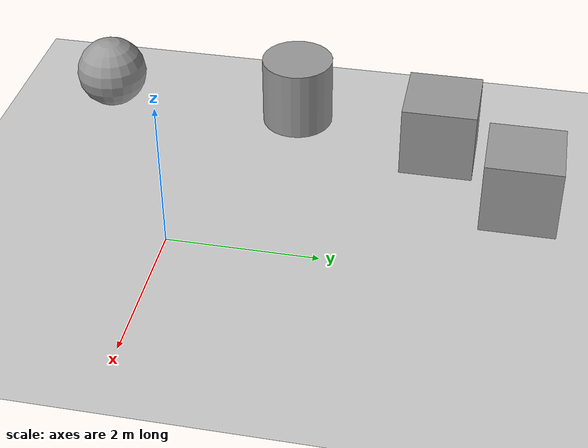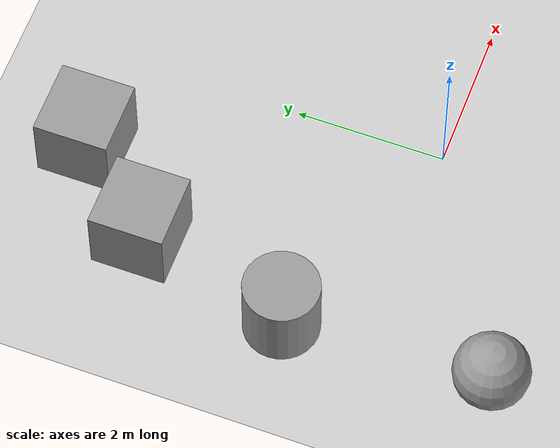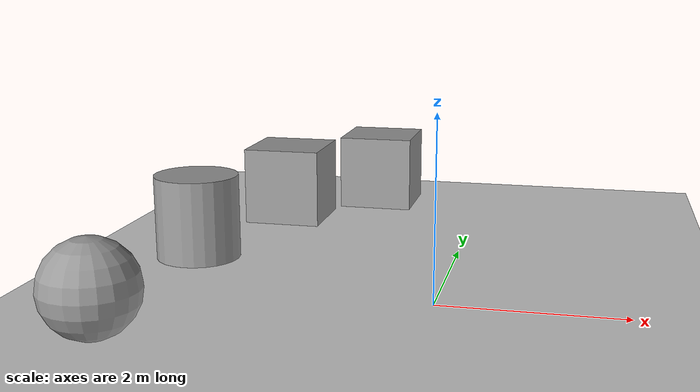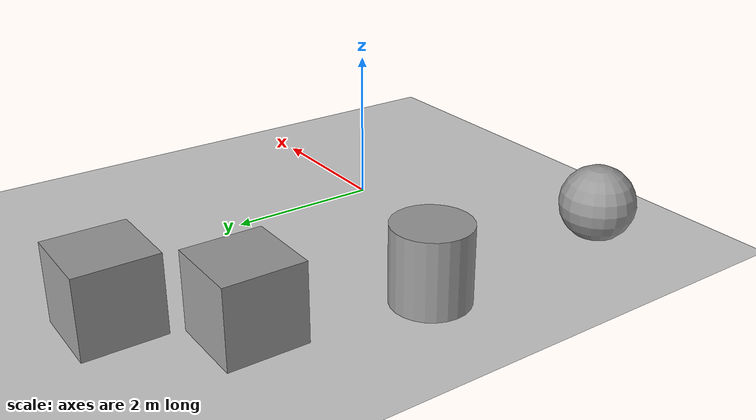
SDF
<sdf version="1.7">
 <world name="default">
  <light name="sun" type="directional">
   <pose>0 0 10 0 -0 0</pose>
   <diffuse>0.8 0.8 0.8 1</diffuse>
   <specular>0.2 0.2 0.2 1</specular>
   <attenuation>
    <range>1000</range>
    <constant>0.9</constant>
    <linear>0.01</linear>
    <quadratic>0.001</quadratic>
   </attenuation>
   <direction>-0.5 0.1 -0.9</direction>
   <spot><inner_angle>0</inner_angle><outer_angle>0</outer_angle><falloff>0</falloff></spot>
  </light>
  <model name="ground_plane">
   <static>1</static>
   <link name="link">
    <collision name="collision">
     <geometry><plane><normal>0 0 1</normal><size>100 100</size></plane></geometry>
     <surface><friction><ode><mu>100</mu><mu2>50</mu2></ode></friction></surface>
    </collision>
    <visual name="visual">
     <cast_shadows>0</cast_shadows>
     <geometry><plane><normal>0 0 1</normal><size>100 100</size></plane></geometry>
     <material>
      <script><uri>file://media/materials/scripts/gazebo.material</uri><name>Gazebo/Grey</name></script>
     </material>
    </visual>
   </link>
  </model>
  <gravity>0 0 -9.8</gravity>
  <magnetic_field>6e-06 2.3e-05 -4.2e-05</magnetic_field>
  <atmosphere type="adiabatic"/>
  <physics type="ode">
   <max_step_size>0.001</max_step_size>
   <real_time_factor>1</real_time_factor>
   <real_time_update_rate>1000</real_time_update_rate>
  </physics>
  <scene><ambient>0.4 0.4 0.4 1</ambient><background>0.7 0.7 0.7 1</background><shadows>1</shadows></scene>
  <spherical_coordinates>
   <surface_model>EARTH_WGS84</surface_model>
   <latitude_deg>0</latitude_deg>
   <longitude_deg>0</longitude_deg>
   <elevation>0</elevation>
   <heading_deg>0</heading_deg>
  </spherical_coordinates>
  <plugin name="truck_gazebo_occupancy_grid" filename="libtruck_gazebo_occupancy_grid.so"/>
  <model name="unit_box">
   <pose>-1.45209 4.39987 0.5 0 -0 0</pose>
   <link name="link">
    <inertial>
     <mass>1</mass>
     <inertia>
      <ixx>0.166667</ixx>
      <ixy>0</ixy>
      <ixz>0</ixz>
      <iyy>0.166667</iyy>
      <iyz>0</iyz>
      <izz>0.166667</izz>
     </inertia>
    </inertial>
    <collision name="collision"><geometry><box><size>1 1 1</size></box></geometry></collision>
    <visual name="visual">
     <geometry><box><size>1 1 1</size></box></geometry>
     <material>
      <script><name>Gazebo/Grey</name><uri>file://media/materials/scripts/gazebo.material</uri></script>
     </material>
    </visual>
   </link>
  </model>
  <model name="unit_box_0">
   <pose>-2.48741 3.2327 0.5 0 -0 0</pose>
   <link name="link">
    <inertial>
     <mass>1</mass>
     <inertia>
      <ixx>0.166667</ixx>
      <ixy>0</ixy>
      <ixz>0</ixz>
      <iyy>0.166667</iyy>
      <iyz>0</iyz>
      <izz>0.166667</izz>
     </inertia>
    </inertial>
    <collision name="collision"><geometry><box><size>1 1 1</size></box></geometry></collision>
    <visual name="visual">
     <geometry><box><size>1 1 1</size></box></geometry>
     <material>
      <script><name>Gazebo/Grey</name><uri>file://media/materials/scripts/gazebo.material</uri></script>
     </material>
    </visual>
   </link>
  </model>
  <model name="unit_sphere">
   <pose>-2.98326 -1.64162 0.5 0 -0 0</pose>
   <link name="link">
    <inertial>
     <mass>1</mass>
     <inertia><ixx>0.1</ixx><ixy>0</ixy><ixz>0</ixz><iyy>0.1</iyy><iyz>0</iyz><izz>0.1</izz></inertia>
    </inertial>
    <collision name="collision"><geometry><sphere><radius>0.5</radius></sphere></geometry></collision>
    <visual name="visual">
     <geometry><sphere><radius>0.5</radius></sphere></geometry>
     <material>
      <script><name>Gazebo/Grey</name><uri>file://media/materials/scripts/gazebo.material</uri></script>
     </material>
    </visual>
   </link>
  </model>
  <model name="truck">
   <plugin name="OdometryPlugin" filename="libtruck_gazebo_odometry.so">
    <link_name>link</link_name>
    <period>0.1</period>
    <xyz_offsets>10 0 0</xyz_offsets>
   </plugin>
   <link name="link">
    <inertial>
     <mass>1</mass>
     <inertia><ixx>0.145833</ixx><ixy>0</ixy><ixz>0</ixz><iyy>0.145833</iyy><iyz>0</iyz><izz>0.125</izz></inertia>
    </inertial>
    <visual name="visual">
     <geometry><cylinder><radius>0.5</radius><length>1</length></cylinder></geometry>
     <material>
      <script><name>Gazebo/Grey</name><uri>file://media/materials/scripts/gazebo.material</uri></script>
      <shader type="pixel"/>
     </material>
    </visual>
    <collision name="collision">
     <geometry><cylinder><radius>0.5</radius><length>1</length></cylinder></geometry>
     <surface>
      <friction>
       <ode><mu>1</mu><mu2>1</mu2><fdir1>0 0 0</fdir1><slip1>0</slip1><slip2>0</slip2></ode>
       <torsional>
        <coefficient>1</coefficient>
        <patch_radius>0</patch_radius>
        <surface_radius>0</surface_radius>
        <use_patch_radius>1</use_patch_radius>
        <ode><slip>0</slip></ode>
       </torsional>
      </friction>
      <bounce><restitution_coefficient>0</restitution_coefficient><threshold>1e+06</threshold></bounce>
      <contact>
       <collide_without_contact>0</collide_without_contact>
       <collide_without_contact_bitmask>1</collide_without_contact_bitmask>
       <collide_bitmask>1</collide_bitmask>
       <ode>
        <soft_cfm>0</soft_cfm>
        <soft_erp>0.2</soft_erp>
        <kp>1e+13</kp>
        <kd>1</kd>
        <max_vel>0.01</max_vel>
        <min_depth>0</min_depth>
       </ode>
       <bullet>
        <split_impulse>1</split_impulse>
        <split_impulse_penetration_threshold>-0.01</split_impulse_penetration_threshold>
        <soft_cfm>0</soft_cfm>
        <soft_erp>0.2</soft_erp>
        <kp>1e+13</kp>
        <kd>1</kd>
       </bullet>
      </contact>
     </surface>
    </collision>
   </link>
   <static>0</static>
   <pose>-3.02411 1.12158 0.5 0 -0 0</pose>
  </model>
 </world>
</sdf>
